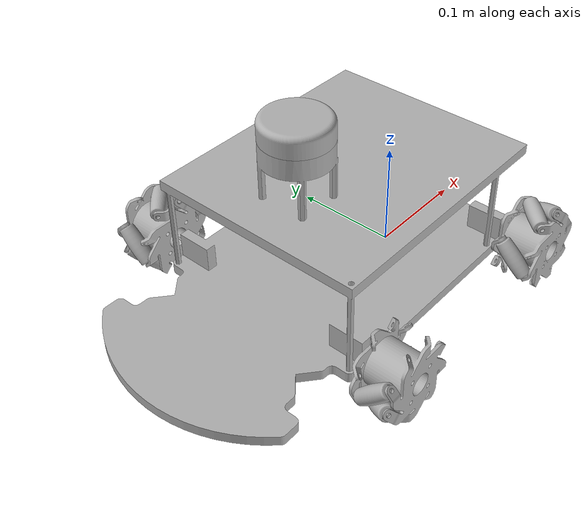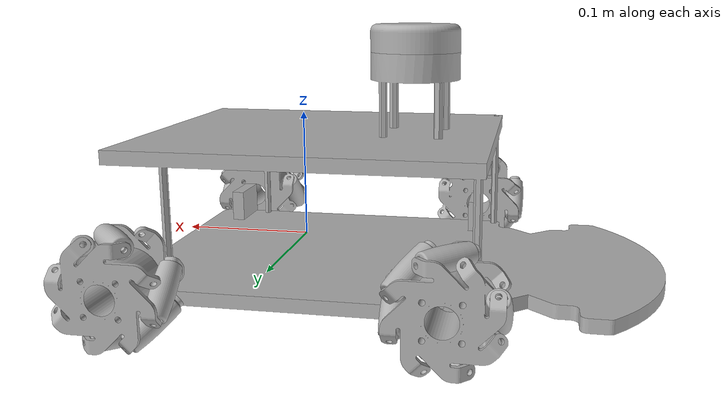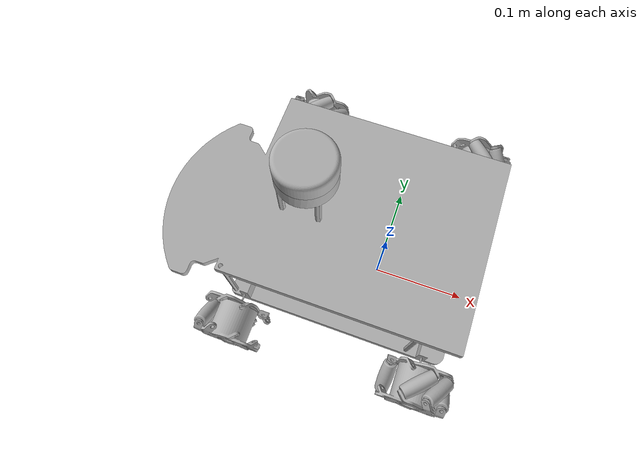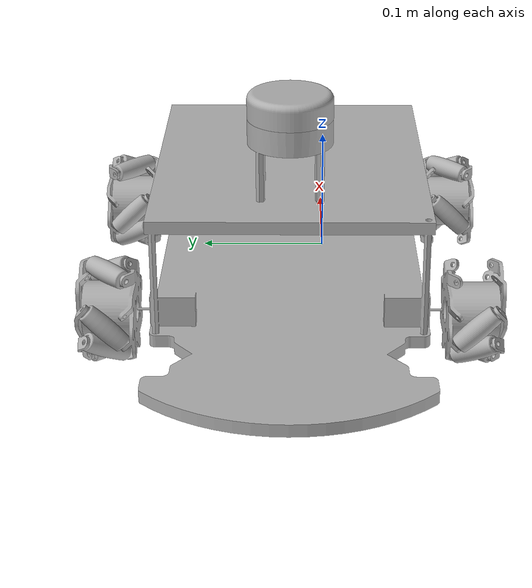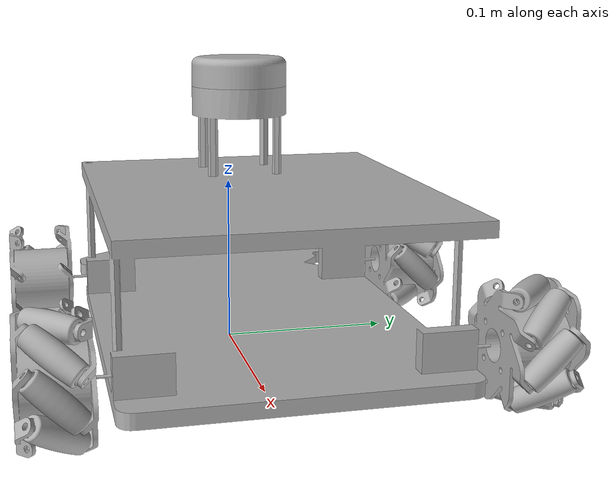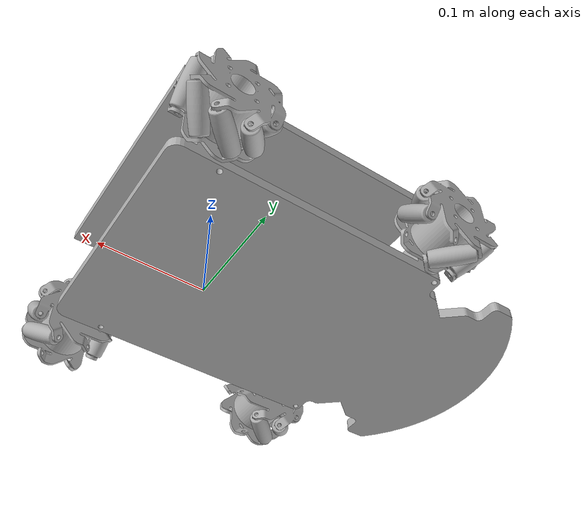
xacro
<?xml version="1.0" ?>
<robot name="car_copy_2" xmlns:xacro="http://www.ros.org/wiki/xacro">

<xacro:include filename="$(find car_copy_2_description)/urdf/materials.xacro" />
<xacro:include filename="$(find car_copy_2_description)/urdf/car_copy_2.trans" />
<xacro:include filename="$(find car_copy_2_description)/urdf/car_copy_2.gazebo" />
<link name="base_link">
  <inertial>
    <origin xyz="-0.05744576591784277 0.026263063131666993 0.03490782751752176" rpy="0 0 0"/>
    <mass value="11.13582814957309"/>
    <inertia ixx="0.069638" iyy="0.130555" izz="0.141689" ixy="1.4e-05" iyz="-4e-06" ixz="-0.009882"/>
  </inertial>
  <visual>
    <origin xyz="0 0 0" rpy="0 0 0"/>
    <geometry>
      <mesh filename="package://car_copy_2_description/meshes/base_link.stl" scale="0.001 0.001 0.001"/>
    </geometry>
    <material name="silver"/>
  </visual>
  <collision>
    <origin xyz="0 0 0" rpy="0 0 0"/>
    <geometry>
      <mesh filename="package://car_copy_2_description/meshes/base_link.stl" scale="0.001 0.001 0.001"/>
    </geometry>
  </collision>
</link>

<link name="lidar_v1_1">
  <inertial>
    <origin xyz="8.890515529325071e-08 -1.7924551614853512e-07 0.009858836865787673" rpy="0 0 0"/>
    <mass value="0.5286905929941373"/>
    <inertia ixx="0.000159" iyy="0.000159" izz="0.000284" ixy="-0.0" iyz="0.0" ixz="0.0"/>
  </inertial>
  <visual>
    <origin xyz="0.093681 -0.026254 -0.149896" rpy="0 0 0"/>
    <geometry>
      <mesh filename="package://car_copy_2_description/meshes/lidar_v1_1.stl" scale="0.001 0.001 0.001"/>
    </geometry>
    <material name="silver"/>
  </visual>
  <collision>
    <origin xyz="0.093681 -0.026254 -0.149896" rpy="0 0 0"/>
    <geometry>
      <mesh filename="package://car_copy_2_description/meshes/lidar_v1_1.stl" scale="0.001 0.001 0.001"/>
    </geometry>
  </collision>
</link>

<link name="macWheel_big_v2_1">
  <inertial>
    <origin xyz="8.991099481603371e-08 -0.021494204245300533 3.369220982320578e-07" rpy="0 0 0"/>
    <mass value="0.4755858352821359"/>
    <inertia ixx="0.000195" iyy="0.000201" izz="0.000195" ixy="-0.0" iyz="-0.0" ixz="0.0"/>
  </inertial>
  <visual>
    <origin xyz="-0.076319 0.091246 -0.007396" rpy="0 0 0"/>
    <geometry>
      <mesh filename="package://car_copy_2_description/meshes/macWheel_big_v2_1.stl" scale="0.001 0.001 0.001"/>
    </geometry>
    <material name="silver"/>
  </visual>
  <collision>
    <origin xyz="-0.076319 0.091246 -0.007396" rpy="0 0 0"/>
    <geometry>
      <mesh filename="package://car_copy_2_description/meshes/macWheel_big_v2_1.stl" scale="0.001 0.001 0.001"/>
    </geometry>
  </collision>
</link>

<link name="wheel_small_com_big_v1_1">
  <inertial>
    <origin xyz="-4.1545169586487685e-07 -4.159208721876695e-07 3.1900678559501627e-07" rpy="0 0 0"/>
    <mass value="0.05173563165158379"/>
    <inertia ixx="5e-06" iyy="4e-06" izz="5e-06" ixy="-2e-06" iyz="2e-06" ixz="1e-06"/>
  </inertial>
  <visual>
    <origin xyz="-0.098525 0.112755 -0.02958" rpy="0 0 0"/>
    <geometry>
      <mesh filename="package://car_copy_2_description/meshes/wheel_small_com_big_v1_1.stl" scale="0.001 0.001 0.001"/>
    </geometry>
    <material name="silver"/>
  </visual>
  <collision>
    <origin xyz="-0.098525 0.112755 -0.02958" rpy="0 0 0"/>
    <geometry>
      <mesh filename="package://car_copy_2_description/meshes/wheel_small_com_big_v1_1.stl" scale="0.001 0.001 0.001"/>
    </geometry>
  </collision>
</link>

<link name="wheel_small_com_big_v1__1__1">
  <inertial>
    <origin xyz="3.015862848620987e-07 -4.159208233378564e-07 4.3692696691244315e-07" rpy="0 0 0"/>
    <mass value="0.05173563165158379"/>
    <inertia ixx="4e-06" iyy="4e-06" izz="6e-06" ixy="-2e-06" iyz="-0.0" ixz="-0.0"/>
  </inertial>
  <visual>
    <origin xyz="-0.076334 0.112755 -0.038784" rpy="0 0 0"/>
    <geometry>
      <mesh filename="package://car_copy_2_description/meshes/wheel_small_com_big_v1__1__1.stl" scale="0.001 0.001 0.001"/>
    </geometry>
    <material name="silver"/>
  </visual>
  <collision>
    <origin xyz="-0.076334 0.112755 -0.038784" rpy="0 0 0"/>
    <geometry>
      <mesh filename="package://car_copy_2_description/meshes/wheel_small_com_big_v1__1__1.stl" scale="0.001 0.001 0.001"/>
    </geometry>
  </collision>
</link>

<link name="wheel_small_com_big_v1__2__1">
  <inertial>
    <origin xyz="-4.0472634010857433e-07 7.429832887817511e-09 3.190067821672027e-07" rpy="0 0 0"/>
    <mass value="0.05173563165158379"/>
    <inertia ixx="5e-06" iyy="4e-06" izz="5e-06" ixy="-2e-06" iyz="-2e-06" ixz="-1e-06"/>
  </inertial>
  <visual>
    <origin xyz="-0.054114 0.112725 -0.02958" rpy="0 0 0"/>
    <geometry>
      <mesh filename="package://car_copy_2_description/meshes/wheel_small_com_big_v1__2__1.stl" scale="0.001 0.001 0.001"/>
    </geometry>
    <material name="silver"/>
  </visual>
  <collision>
    <origin xyz="-0.054114 0.112725 -0.02958" rpy="0 0 0"/>
    <geometry>
      <mesh filename="package://car_copy_2_description/meshes/wheel_small_com_big_v1__2__1.stl" scale="0.001 0.001 0.001"/>
    </geometry>
  </collision>
</link>

<link name="wheel_small_com_big_v1__3__1">
  <inertial>
    <origin xyz="-1.0088931273743995e-08 7.429783607793006e-09 1.252517464137709e-07" rpy="0 0 0"/>
    <mass value="0.05173563165158379"/>
    <inertia ixx="6e-06" iyy="4e-06" izz="4e-06" ixy="0.0" iyz="-2e-06" ixz="0.0"/>
  </inertial>
  <visual>
    <origin xyz="-0.044931 0.112725 -0.007381" rpy="0 0 0"/>
    <geometry>
      <mesh filename="package://car_copy_2_description/meshes/wheel_small_com_big_v1__3__1.stl" scale="0.001 0.001 0.001"/>
    </geometry>
    <material name="silver"/>
  </visual>
  <collision>
    <origin xyz="-0.044931 0.112725 -0.007381" rpy="0 0 0"/>
    <geometry>
      <mesh filename="package://car_copy_2_description/meshes/wheel_small_com_big_v1__3__1.stl" scale="0.001 0.001 0.001"/>
    </geometry>
  </collision>
</link>

<link name="wheel_small_com_big_v1__4__1">
  <inertial>
    <origin xyz="1.8991089797970595e-07 7.429785620072238e-09 -4.5139764098638124e-07" rpy="0 0 0"/>
    <mass value="0.05173563165158379"/>
    <inertia ixx="6e-06" iyy="4e-06" izz="4e-06" ixy="-0.0" iyz="2e-06" ixz="0.0"/>
  </inertial>
  <visual>
    <origin xyz="-0.107707 0.112725 -0.007412" rpy="0 0 0"/>
    <geometry>
      <mesh filename="package://car_copy_2_description/meshes/wheel_small_com_big_v1__4__1.stl" scale="0.001 0.001 0.001"/>
    </geometry>
    <material name="silver"/>
  </visual>
  <collision>
    <origin xyz="-0.107707 0.112725 -0.007412" rpy="0 0 0"/>
    <geometry>
      <mesh filename="package://car_copy_2_description/meshes/wheel_small_com_big_v1__4__1.stl" scale="0.001 0.001 0.001"/>
    </geometry>
  </collision>
</link>

<link name="wheel_small_com_big_v1__5__1">
  <inertial>
    <origin xyz="-4.154516963644772e-07 7.429741641362675e-09 3.548471798949654e-07" rpy="0 0 0"/>
    <mass value="0.05173563165158379"/>
    <inertia ixx="5e-06" iyy="4e-06" izz="5e-06" ixy="2e-06" iyz="2e-06" ixz="-1e-06"/>
  </inertial>
  <visual>
    <origin xyz="-0.098525 0.112725 0.014788" rpy="0 0 0"/>
    <geometry>
      <mesh filename="package://car_copy_2_description/meshes/wheel_small_com_big_v1__5__1.stl" scale="0.001 0.001 0.001"/>
    </geometry>
    <material name="silver"/>
  </visual>
  <collision>
    <origin xyz="-0.098525 0.112725 0.014788" rpy="0 0 0"/>
    <geometry>
      <mesh filename="package://car_copy_2_description/meshes/wheel_small_com_big_v1__5__1.stl" scale="0.001 0.001 0.001"/>
    </geometry>
  </collision>
</link>

<link name="wheel_small_com_big_v1__7__1">
  <inertial>
    <origin xyz="3.0158628457066516e-07 7.429790366275668e-09 2.3692696700036708e-07" rpy="0 0 0"/>
    <mass value="0.05173563165158379"/>
    <inertia ixx="4e-06" iyy="4e-06" izz="6e-06" ixy="2e-06" iyz="0.0" ixz="-0.0"/>
  </inertial>
  <visual>
    <origin xyz="-0.076334 0.112725 0.023992" rpy="0 0 0"/>
    <geometry>
      <mesh filename="package://car_copy_2_description/meshes/wheel_small_com_big_v1__7__1.stl" scale="0.001 0.001 0.001"/>
    </geometry>
    <material name="silver"/>
  </visual>
  <collision>
    <origin xyz="-0.076334 0.112725 0.023992" rpy="0 0 0"/>
    <geometry>
      <mesh filename="package://car_copy_2_description/meshes/wheel_small_com_big_v1__7__1.stl" scale="0.001 0.001 0.001"/>
    </geometry>
  </collision>
</link>

<link name="wheel_small_com_big_v1__6__1">
  <inertial>
    <origin xyz="1.0783118038065753e-07 7.429838771999542e-09 -1.5771033719594318e-07" rpy="0 0 0"/>
    <mass value="0.05173563165158379"/>
    <inertia ixx="5e-06" iyy="4e-06" izz="5e-06" ixy="2e-06" iyz="-2e-06" ixz="1e-06"/>
  </inertial>
  <visual>
    <origin xyz="-0.054135 0.112725 0.014809" rpy="0 0 0"/>
    <geometry>
      <mesh filename="package://car_copy_2_description/meshes/wheel_small_com_big_v1__6__1.stl" scale="0.001 0.001 0.001"/>
    </geometry>
    <material name="silver"/>
  </visual>
  <collision>
    <origin xyz="-0.054135 0.112725 0.014809" rpy="0 0 0"/>
    <geometry>
      <mesh filename="package://car_copy_2_description/meshes/wheel_small_com_big_v1__6__1.stl" scale="0.001 0.001 0.001"/>
    </geometry>
  </collision>
</link>

<link name="macWheel_big_v2_Mirror__1">
  <inertial>
    <origin xyz="8.991099474664477e-08 0.02327117826473324 3.369220980290952e-07" rpy="0 0 0"/>
    <mass value="0.4755858352821358"/>
    <inertia ixx="0.000195" iyy="0.000201" izz="0.000195" ixy="0.0" iyz="0.0" ixz="0.0"/>
  </inertial>
  <visual>
    <origin xyz="-0.076319 -0.143754 -0.007396" rpy="0 0 0"/>
    <geometry>
      <mesh filename="package://car_copy_2_description/meshes/macWheel_big_v2_Mirror__1.stl" scale="0.001 0.001 0.001"/>
    </geometry>
    <material name="silver"/>
  </visual>
  <collision>
    <origin xyz="-0.076319 -0.143754 -0.007396" rpy="0 0 0"/>
    <geometry>
      <mesh filename="package://car_copy_2_description/meshes/macWheel_big_v2_Mirror__1.stl" scale="0.001 0.001 0.001"/>
    </geometry>
  </collision>
</link>

<link name="wheel_small_com_big_v1__8__1">
  <inertial>
    <origin xyz="7.199078254360725e-08 -3.34103028021282e-08 -1.6843569376756573e-07" rpy="0 0 0"/>
    <mass value="0.05173563165158379"/>
    <inertia ixx="5e-06" iyy="4e-06" izz="5e-06" ixy="2e-06" iyz="-2e-06" ixz="1e-06"/>
  </inertial>
  <visual>
    <origin xyz="-0.098503 -0.16701 -0.029602" rpy="0 0 0"/>
    <geometry>
      <mesh filename="package://car_copy_2_description/meshes/wheel_small_com_big_v1__8__1.stl" scale="0.001 0.001 0.001"/>
    </geometry>
    <material name="silver"/>
  </visual>
  <collision>
    <origin xyz="-0.098503 -0.16701 -0.029602" rpy="0 0 0"/>
    <geometry>
      <mesh filename="package://car_copy_2_description/meshes/wheel_small_com_big_v1__8__1.stl" scale="0.001 0.001 0.001"/>
    </geometry>
  </collision>
</link>

<link name="wheel_small_com_big_v1__9__1">
  <inertial>
    <origin xyz="3.015862843069872e-07 3.899402557516751e-07 4.3692696678754306e-07" rpy="0 0 0"/>
    <mass value="0.05173563165158379"/>
    <inertia ixx="4e-06" iyy="4e-06" izz="6e-06" ixy="2e-06" iyz="0.0" ixz="-0.0"/>
  </inertial>
  <visual>
    <origin xyz="-0.076334 -0.16704 -0.038784" rpy="0 0 0"/>
    <geometry>
      <mesh filename="package://car_copy_2_description/meshes/wheel_small_com_big_v1__9__1.stl" scale="0.001 0.001 0.001"/>
    </geometry>
    <material name="silver"/>
  </visual>
  <collision>
    <origin xyz="-0.076334 -0.16704 -0.038784" rpy="0 0 0"/>
    <geometry>
      <mesh filename="package://car_copy_2_description/meshes/wheel_small_com_big_v1__9__1.stl" scale="0.001 0.001 0.001"/>
    </geometry>
  </collision>
</link>

<link name="wheel_small_com_big_v1__10__1">
  <inertial>
    <origin xyz="1.0783117992269053e-07 3.899402070406399e-07 -1.6843569693864024e-07" rpy="0 0 0"/>
    <mass value="0.05173563165158379"/>
    <inertia ixx="5e-06" iyy="4e-06" izz="5e-06" ixy="2e-06" iyz="2e-06" ixz="-1e-06"/>
  </inertial>
  <visual>
    <origin xyz="-0.054135 -0.16704 -0.029602" rpy="0 0 0"/>
    <geometry>
      <mesh filename="package://car_copy_2_description/meshes/wheel_small_com_big_v1__10__1.stl" scale="0.001 0.001 0.001"/>
    </geometry>
    <material name="silver"/>
  </visual>
  <collision>
    <origin xyz="-0.054135 -0.16704 -0.029602" rpy="0 0 0"/>
    <geometry>
      <mesh filename="package://car_copy_2_description/meshes/wheel_small_com_big_v1__10__1.stl" scale="0.001 0.001 0.001"/>
    </geometry>
  </collision>
</link>

<link name="wheel_small_com_big_v1__11__1">
  <inertial>
    <origin xyz="-1.0088932335394762e-08 -3.3410351013563044e-08 1.2525174600003935e-07" rpy="0 0 0"/>
    <mass value="0.05173563165158379"/>
    <inertia ixx="6e-06" iyy="4e-06" izz="4e-06" ixy="-0.0" iyz="2e-06" ixz="0.0"/>
  </inertial>
  <visual>
    <origin xyz="-0.044931 -0.16701 -0.007381" rpy="0 0 0"/>
    <geometry>
      <mesh filename="package://car_copy_2_description/meshes/wheel_small_com_big_v1__11__1.stl" scale="0.001 0.001 0.001"/>
    </geometry>
    <material name="silver"/>
  </visual>
  <collision>
    <origin xyz="-0.044931 -0.16701 -0.007381" rpy="0 0 0"/>
    <geometry>
      <mesh filename="package://car_copy_2_description/meshes/wheel_small_com_big_v1__11__1.stl" scale="0.001 0.001 0.001"/>
    </geometry>
  </collision>
</link>

<link name="wheel_small_com_big_v1__12__1">
  <inertial>
    <origin xyz="1.8991106845445138e-07 3.8994024945115946e-07 1.2525174589855803e-07" rpy="0 0 0"/>
    <mass value="0.05173563165158379"/>
    <inertia ixx="6e-06" iyy="4e-06" izz="4e-06" ixy="0.0" iyz="-2e-06" ixz="0.0"/>
  </inertial>
  <visual>
    <origin xyz="-0.107707 -0.16704 -0.007381" rpy="0 0 0"/>
    <geometry>
      <mesh filename="package://car_copy_2_description/meshes/wheel_small_com_big_v1__12__1.stl" scale="0.001 0.001 0.001"/>
    </geometry>
    <material name="silver"/>
  </visual>
  <collision>
    <origin xyz="-0.107707 -0.16704 -0.007381" rpy="0 0 0"/>
    <geometry>
      <mesh filename="package://car_copy_2_description/meshes/wheel_small_com_big_v1__12__1.stl" scale="0.001 0.001 0.001"/>
    </geometry>
  </collision>
</link>

<link name="wheel_small_com_big_v1__13__1">
  <inertial>
    <origin xyz="1.0783118069290776e-07 -3.3410405525513553e-08 -1.577103363840926e-07" rpy="0 0 0"/>
    <mass value="0.05173563165158379"/>
    <inertia ixx="5e-06" iyy="4e-06" izz="5e-06" ixy="-2e-06" iyz="2e-06" ixz="1e-06"/>
  </inertial>
  <visual>
    <origin xyz="-0.054135 -0.16701 0.014809" rpy="0 0 0"/>
    <geometry>
      <mesh filename="package://car_copy_2_description/meshes/wheel_small_com_big_v1__13__1.stl" scale="0.001 0.001 0.001"/>
    </geometry>
    <material name="silver"/>
  </visual>
  <collision>
    <origin xyz="-0.054135 -0.16701 0.014809" rpy="0 0 0"/>
    <geometry>
      <mesh filename="package://car_copy_2_description/meshes/wheel_small_com_big_v1__13__1.stl" scale="0.001 0.001 0.001"/>
    </geometry>
  </collision>
</link>

<link name="wheel_small_com_big_v1__14__1">
  <inertial>
    <origin xyz="3.0158628468168747e-07 -3.3410357730412343e-08 2.3692696789201495e-07" rpy="0 0 0"/>
    <mass value="0.05173563165158379"/>
    <inertia ixx="4e-06" iyy="4e-06" izz="6e-06" ixy="-2e-06" iyz="-0.0" ixz="-0.0"/>
  </inertial>
  <visual>
    <origin xyz="-0.076334 -0.16701 0.023992" rpy="0 0 0"/>
    <geometry>
      <mesh filename="package://car_copy_2_description/meshes/wheel_small_com_big_v1__14__1.stl" scale="0.001 0.001 0.001"/>
    </geometry>
    <material name="silver"/>
  </visual>
  <collision>
    <origin xyz="-0.076334 -0.16701 0.023992" rpy="0 0 0"/>
    <geometry>
      <mesh filename="package://car_copy_2_description/meshes/wheel_small_com_big_v1__14__1.stl" scale="0.001 0.001 0.001"/>
    </geometry>
  </collision>
</link>

<link name="wheel_small_com_big_v1__15__1">
  <inertial>
    <origin xyz="7.199078351505239e-08 3.8994029774586103e-07 -1.5771034077467772e-07" rpy="0 0 0"/>
    <mass value="0.05173563165158379"/>
    <inertia ixx="5e-06" iyy="4e-06" izz="5e-06" ixy="-2e-06" iyz="-2e-06" ixz="-1e-06"/>
  </inertial>
  <visual>
    <origin xyz="-0.098503 -0.16704 0.014809" rpy="0 0 0"/>
    <geometry>
      <mesh filename="package://car_copy_2_description/meshes/wheel_small_com_big_v1__15__1.stl" scale="0.001 0.001 0.001"/>
    </geometry>
    <material name="silver"/>
  </visual>
  <collision>
    <origin xyz="-0.098503 -0.16704 0.014809" rpy="0 0 0"/>
    <geometry>
      <mesh filename="package://car_copy_2_description/meshes/wheel_small_com_big_v1__15__1.stl" scale="0.001 0.001 0.001"/>
    </geometry>
  </collision>
</link>

<link name="macWheel_big_v2__1__1">
  <inertial>
    <origin xyz="8.991099478827813e-08 0.021493845754267993 3.3693200623009095e-07" rpy="0 0 0"/>
    <mass value="0.4755858352821359"/>
    <inertia ixx="0.000195" iyy="0.000201" izz="0.000195" ixy="0.0" iyz="-0.0" ixz="-0.0"/>
  </inertial>
  <visual>
    <origin xyz="0.133681 -0.143754 -0.007396" rpy="0 0 0"/>
    <geometry>
      <mesh filename="package://car_copy_2_description/meshes/macWheel_big_v2__1__1.stl" scale="0.001 0.001 0.001"/>
    </geometry>
    <material name="silver"/>
  </visual>
  <collision>
    <origin xyz="0.133681 -0.143754 -0.007396" rpy="0 0 0"/>
    <geometry>
      <mesh filename="package://car_copy_2_description/meshes/macWheel_big_v2__1__1.stl" scale="0.001 0.001 0.001"/>
    </geometry>
  </collision>
</link>

<link name="wheel_small_com_big_v1__16__1">
  <inertial>
    <origin xyz="-4.1545169618406597e-07 -3.6592087215847613e-07 3.190067861501278e-07" rpy="0 0 0"/>
    <mass value="0.05173563165158379"/>
    <inertia ixx="5e-06" iyy="4e-06" izz="5e-06" ixy="-2e-06" iyz="2e-06" ixz="1e-06"/>
  </inertial>
  <visual>
    <origin xyz="0.111475 -0.165233 -0.02958" rpy="0 0 0"/>
    <geometry>
      <mesh filename="package://car_copy_2_description/meshes/wheel_small_com_big_v1__16__1.stl" scale="0.001 0.001 0.001"/>
    </geometry>
    <material name="silver"/>
  </visual>
  <collision>
    <origin xyz="0.111475 -0.165233 -0.02958" rpy="0 0 0"/>
    <geometry>
      <mesh filename="package://car_copy_2_description/meshes/wheel_small_com_big_v1__16__1.stl" scale="0.001 0.001 0.001"/>
    </geometry>
  </collision>
</link>

<link name="wheel_small_com_big_v1__17__1">
  <inertial>
    <origin xyz="3.0158628472332083e-07 -3.659208228923294e-07 4.369269677867438e-07" rpy="0 0 0"/>
    <mass value="0.05173563165158379"/>
    <inertia ixx="4e-06" iyy="4e-06" izz="6e-06" ixy="-2e-06" iyz="-0.0" ixz="-0.0"/>
  </inertial>
  <visual>
    <origin xyz="0.133666 -0.165233 -0.038784" rpy="0 0 0"/>
    <geometry>
      <mesh filename="package://car_copy_2_description/meshes/wheel_small_com_big_v1__17__1.stl" scale="0.001 0.001 0.001"/>
    </geometry>
    <material name="silver"/>
  </visual>
  <collision>
    <origin xyz="0.133666 -0.165233 -0.038784" rpy="0 0 0"/>
    <geometry>
      <mesh filename="package://car_copy_2_description/meshes/wheel_small_com_big_v1__17__1.stl" scale="0.001 0.001 0.001"/>
    </geometry>
  </collision>
</link>

<link name="wheel_small_com_big_v1__18__1">
  <inertial>
    <origin xyz="1.8991089988096288e-07 5.742978409495336e-08 -4.5139764158919765e-07" rpy="0 0 0"/>
    <mass value="0.05173563165158379"/>
    <inertia ixx="6e-06" iyy="4e-06" izz="4e-06" ixy="-0.0" iyz="2e-06" ixz="0.0"/>
  </inertial>
  <visual>
    <origin xyz="0.102293 -0.165263 -0.007412" rpy="0 0 0"/>
    <geometry>
      <mesh filename="package://car_copy_2_description/meshes/wheel_small_com_big_v1__18__1.stl" scale="0.001 0.001 0.001"/>
    </geometry>
    <material name="silver"/>
  </visual>
  <collision>
    <origin xyz="0.102293 -0.165263 -0.007412" rpy="0 0 0"/>
    <geometry>
      <mesh filename="package://car_copy_2_description/meshes/wheel_small_com_big_v1__18__1.stl" scale="0.001 0.001 0.001"/>
    </geometry>
  </collision>
</link>

<link name="wheel_small_com_big_v1__19__1">
  <inertial>
    <origin xyz="-4.1545169618406597e-07 5.742974157341152e-08 3.548471804726283e-07" rpy="0 0 0"/>
    <mass value="0.05173563165158379"/>
    <inertia ixx="5e-06" iyy="4e-06" izz="5e-06" ixy="2e-06" iyz="2e-06" ixz="-1e-06"/>
  </inertial>
  <visual>
    <origin xyz="0.111475 -0.165263 0.014788" rpy="0 0 0"/>
    <geometry>
      <mesh filename="package://car_copy_2_description/meshes/wheel_small_com_big_v1__19__1.stl" scale="0.001 0.001 0.001"/>
    </geometry>
    <material name="silver"/>
  </visual>
  <collision>
    <origin xyz="0.111475 -0.165263 0.014788" rpy="0 0 0"/>
    <geometry>
      <mesh filename="package://car_copy_2_description/meshes/wheel_small_com_big_v1__19__1.stl" scale="0.001 0.001 0.001"/>
    </geometry>
  </collision>
</link>

<link name="wheel_small_com_big_v1__20__1">
  <inertial>
    <origin xyz="-4.047263396644851e-07 5.742983336110008e-08 3.190067824274112e-07" rpy="0 0 0"/>
    <mass value="0.05173563165158379"/>
    <inertia ixx="5e-06" iyy="4e-06" izz="5e-06" ixy="-2e-06" iyz="-2e-06" ixz="-1e-06"/>
  </inertial>
  <visual>
    <origin xyz="0.155886 -0.165263 -0.02958" rpy="0 0 0"/>
    <geometry>
      <mesh filename="package://car_copy_2_description/meshes/wheel_small_com_big_v1__20__1.stl" scale="0.001 0.001 0.001"/>
    </geometry>
    <material name="silver"/>
  </visual>
  <collision>
    <origin xyz="0.155886 -0.165263 -0.02958" rpy="0 0 0"/>
    <geometry>
      <mesh filename="package://car_copy_2_description/meshes/wheel_small_com_big_v1__20__1.stl" scale="0.001 0.001 0.001"/>
    </geometry>
  </collision>
</link>

<link name="wheel_small_com_big_v1__21__1">
  <inertial>
    <origin xyz="-1.0089100943577733e-08 -3.6592081614772454e-07 -4.5139764168720953e-07" rpy="0 0 0"/>
    <mass value="0.05173563165158379"/>
    <inertia ixx="6e-06" iyy="4e-06" izz="4e-06" ixy="0.0" iyz="-2e-06" ixz="0.0"/>
  </inertial>
  <visual>
    <origin xyz="0.165069 -0.165233 -0.007412" rpy="0 0 0"/>
    <geometry>
      <mesh filename="package://car_copy_2_description/meshes/wheel_small_com_big_v1__21__1.stl" scale="0.001 0.001 0.001"/>
    </geometry>
    <material name="silver"/>
  </visual>
  <collision>
    <origin xyz="0.165069 -0.165233 -0.007412" rpy="0 0 0"/>
    <geometry>
      <mesh filename="package://car_copy_2_description/meshes/wheel_small_com_big_v1__21__1.stl" scale="0.001 0.001 0.001"/>
    </geometry>
  </collision>
</link>

<link name="wheel_small_com_big_v1__22__1">
  <inertial>
    <origin xyz="3.015862846678097e-07 5.7429790589758056e-08 2.3692696787119827e-07" rpy="0 0 0"/>
    <mass value="0.05173563165158379"/>
    <inertia ixx="4e-06" iyy="4e-06" izz="6e-06" ixy="2e-06" iyz="0.0" ixz="-0.0"/>
  </inertial>
  <visual>
    <origin xyz="0.133666 -0.165263 0.023992" rpy="0 0 0"/>
    <geometry>
      <mesh filename="package://car_copy_2_description/meshes/wheel_small_com_big_v1__22__1.stl" scale="0.001 0.001 0.001"/>
    </geometry>
    <material name="silver"/>
  </visual>
  <collision>
    <origin xyz="0.133666 -0.165263 0.023992" rpy="0 0 0"/>
    <geometry>
      <mesh filename="package://car_copy_2_description/meshes/wheel_small_com_big_v1__22__1.stl" scale="0.001 0.001 0.001"/>
    </geometry>
  </collision>
</link>

<link name="wheel_small_com_big_v1__23__1">
  <inertial>
    <origin xyz="3.7429939472866103e-07 -4.1757016064347674e-07 -3.741785504478984e-07" rpy="0 0 0"/>
    <mass value="0.05173563165158379"/>
    <inertia ixx="5e-06" iyy="4e-06" izz="5e-06" ixy="2e-06" iyz="-2e-06" ixz="1e-06"/>
  </inertial>
  <visual>
    <origin xyz="0.154118 -0.166287 0.014509" rpy="0 0 0"/>
    <geometry>
      <mesh filename="package://car_copy_2_description/meshes/wheel_small_com_big_v1__23__1.stl" scale="0.001 0.001 0.001"/>
    </geometry>
    <material name="silver"/>
  </visual>
  <collision>
    <origin xyz="0.154118 -0.166287 0.014509" rpy="0 0 0"/>
    <geometry>
      <mesh filename="package://car_copy_2_description/meshes/wheel_small_com_big_v1__23__1.stl" scale="0.001 0.001 0.001"/>
    </geometry>
  </collision>
</link>

<link name="macWheel_big_v2_Mirror__2">
  <inertial>
    <origin xyz="8.991099476052256e-08 -0.02327153675619756 3.3692209818782237e-07" rpy="0 0 0"/>
    <mass value="0.4755858352821358"/>
    <inertia ixx="0.000195" iyy="0.000201" izz="0.000195" ixy="0.0" iyz="0.0" ixz="0.0"/>
  </inertial>
  <visual>
    <origin xyz="0.133681 0.091246 -0.007396" rpy="0 0 0"/>
    <geometry>
      <mesh filename="package://car_copy_2_description/meshes/macWheel_big_v2_Mirror__2.stl" scale="0.001 0.001 0.001"/>
    </geometry>
    <material name="silver"/>
  </visual>
  <collision>
    <origin xyz="0.133681 0.091246 -0.007396" rpy="0 0 0"/>
    <geometry>
      <mesh filename="package://car_copy_2_description/meshes/macWheel_big_v2_Mirror__2.stl" scale="0.001 0.001 0.001"/>
    </geometry>
  </collision>
</link>

<link name="wheel_small_com_big_v1__31__1">
  <inertial>
    <origin xyz="-1.21764323568474e-07 2.5156871683029713e-07 4.3692696793246055e-07" rpy="0 0 0"/>
    <mass value="0.05173563165158379"/>
    <inertia ixx="4e-06" iyy="4e-06" izz="6e-06" ixy="2e-06" iyz="0.0" ixz="-0.0"/>
  </inertial>
  <visual>
    <origin xyz="0.133696 0.114533 -0.038784" rpy="0 0 0"/>
    <geometry>
      <mesh filename="package://car_copy_2_description/meshes/wheel_small_com_big_v1__31__1.stl" scale="0.001 0.001 0.001"/>
    </geometry>
    <material name="silver"/>
  </visual>
  <collision>
    <origin xyz="0.133696 0.114533 -0.038784" rpy="0 0 0"/>
    <geometry>
      <mesh filename="package://car_copy_2_description/meshes/wheel_small_com_big_v1__31__1.stl" scale="0.001 0.001 0.001"/>
    </geometry>
  </collision>
</link>

<link name="wheel_small_com_big_v1__30__1">
  <inertial>
    <origin xyz="-4.047263403583745e-07 2.5156866959030744e-07 3.1900678305885055e-07" rpy="0 0 0"/>
    <mass value="0.05173563165158379"/>
    <inertia ixx="5e-06" iyy="4e-06" izz="5e-06" ixy="2e-06" iyz="2e-06" ixz="-1e-06"/>
  </inertial>
  <visual>
    <origin xyz="0.155886 0.114533 -0.02958" rpy="0 0 0"/>
    <geometry>
      <mesh filename="package://car_copy_2_description/meshes/wheel_small_com_big_v1__30__1.stl" scale="0.001 0.001 0.001"/>
    </geometry>
    <material name="silver"/>
  </visual>
  <collision>
    <origin xyz="0.155886 0.114533 -0.02958" rpy="0 0 0"/>
    <geometry>
      <mesh filename="package://car_copy_2_description/meshes/wheel_small_com_big_v1__30__1.stl" scale="0.001 0.001 0.001"/>
    </geometry>
  </collision>
</link>

<link name="wheel_small_com_big_v1__29__1">
  <inertial>
    <origin xyz="-4.154516961563104e-07 -3.25080626556451e-07 3.190067862784973e-07" rpy="0 0 0"/>
    <mass value="0.05173563165158379"/>
    <inertia ixx="5e-06" iyy="4e-06" izz="5e-06" ixy="2e-06" iyz="-2e-06" ixz="1e-06"/>
  </inertial>
  <visual>
    <origin xyz="0.111475 0.114502 -0.02958" rpy="0 0 0"/>
    <geometry>
      <mesh filename="package://car_copy_2_description/meshes/wheel_small_com_big_v1__29__1.stl" scale="0.001 0.001 0.001"/>
    </geometry>
    <material name="silver"/>
  </visual>
  <collision>
    <origin xyz="0.111475 0.114502 -0.02958" rpy="0 0 0"/>
    <geometry>
      <mesh filename="package://car_copy_2_description/meshes/wheel_small_com_big_v1__29__1.stl" scale="0.001 0.001 0.001"/>
    </geometry>
  </collision>
</link>

<link name="wheel_small_com_big_v1__28__1">
  <inertial>
    <origin xyz="1.899110684266958e-07 -3.2508068155412406e-07 1.2525174605641787e-07" rpy="0 0 0"/>
    <mass value="0.05173563165158379"/>
    <inertia ixx="6e-06" iyy="4e-06" izz="4e-06" ixy="0.0" iyz="-2e-06" ixz="0.0"/>
  </inertial>
  <visual>
    <origin xyz="0.102293 0.114502 -0.007381" rpy="0 0 0"/>
    <geometry>
      <mesh filename="package://car_copy_2_description/meshes/wheel_small_com_big_v1__28__1.stl" scale="0.001 0.001 0.001"/>
    </geometry>
    <material name="silver"/>
  </visual>
  <collision>
    <origin xyz="0.102293 0.114502 -0.007381" rpy="0 0 0"/>
    <geometry>
      <mesh filename="package://car_copy_2_description/meshes/wheel_small_com_big_v1__28__1.stl" scale="0.001 0.001 0.001"/>
    </geometry>
  </collision>
</link>

<link name="wheel_small_com_big_v1__27__1">
  <inertial>
    <origin xyz="-1.008893213416684e-08 2.515687181348092e-07 1.2525174613448042e-07" rpy="0 0 0"/>
    <mass value="0.05173563165158379"/>
    <inertia ixx="6e-06" iyy="4e-06" izz="4e-06" ixy="-0.0" iyz="2e-06" ixz="0.0"/>
  </inertial>
  <visual>
    <origin xyz="0.165069 0.114533 -0.007381" rpy="0 0 0"/>
    <geometry>
      <mesh filename="package://car_copy_2_description/meshes/wheel_small_com_big_v1__27__1.stl" scale="0.001 0.001 0.001"/>
    </geometry>
    <material name="silver"/>
  </visual>
  <collision>
    <origin xyz="0.165069 0.114533 -0.007381" rpy="0 0 0"/>
    <geometry>
      <mesh filename="package://car_copy_2_description/meshes/wheel_small_com_big_v1__27__1.stl" scale="0.001 0.001 0.001"/>
    </geometry>
  </collision>
</link>

<link name="wheel_small_com_big_v1__26__1">
  <inertial>
    <origin xyz="7.199078354280797e-08 -3.2508063332881143e-07 -1.577103405734498e-07" rpy="0 0 0"/>
    <mass value="0.05173563165158379"/>
    <inertia ixx="5e-06" iyy="4e-06" izz="5e-06" ixy="-2e-06" iyz="-2e-06" ixz="-1e-06"/>
  </inertial>
  <visual>
    <origin xyz="0.111497 0.114502 0.014809" rpy="0 0 0"/>
    <geometry>
      <mesh filename="package://car_copy_2_description/meshes/wheel_small_com_big_v1__26__1.stl" scale="0.001 0.001 0.001"/>
    </geometry>
    <material name="silver"/>
  </visual>
  <collision>
    <origin xyz="0.111497 0.114502 0.014809" rpy="0 0 0"/>
    <geometry>
      <mesh filename="package://car_copy_2_description/meshes/wheel_small_com_big_v1__26__1.stl" scale="0.001 0.001 0.001"/>
    </geometry>
  </collision>
</link>

<link name="wheel_small_com_big_v1__25__1">
  <inertial>
    <origin xyz="-4.0472633897059573e-07 -3.250807301402592e-07 3.5484718438616447e-07" rpy="0 0 0"/>
    <mass value="0.05173563165158379"/>
    <inertia ixx="5e-06" iyy="4e-06" izz="5e-06" ixy="-2e-06" iyz="2e-06" ixz="1e-06"/>
  </inertial>
  <visual>
    <origin xyz="0.155886 0.114502 0.014788" rpy="0 0 0"/>
    <geometry>
      <mesh filename="package://car_copy_2_description/meshes/wheel_small_com_big_v1__25__1.stl" scale="0.001 0.001 0.001"/>
    </geometry>
    <material name="silver"/>
  </visual>
  <collision>
    <origin xyz="0.155886 0.114502 0.014788" rpy="0 0 0"/>
    <geometry>
      <mesh filename="package://car_copy_2_description/meshes/wheel_small_com_big_v1__25__1.stl" scale="0.001 0.001 0.001"/>
    </geometry>
  </collision>
</link>

<link name="wheel_small_com_big_v1__24__1">
  <inertial>
    <origin xyz="-1.2176431712918045e-07 -3.250806760723979e-07 2.3692696809324287e-07" rpy="0 0 0"/>
    <mass value="0.05173563165158379"/>
    <inertia ixx="4e-06" iyy="4e-06" izz="6e-06" ixy="-2e-06" iyz="0.0" ixz="0.0"/>
  </inertial>
  <visual>
    <origin xyz="0.133696 0.114502 0.023992" rpy="0 0 0"/>
    <geometry>
      <mesh filename="package://car_copy_2_description/meshes/wheel_small_com_big_v1__24__1.stl" scale="0.001 0.001 0.001"/>
    </geometry>
    <material name="silver"/>
  </visual>
  <collision>
    <origin xyz="0.133696 0.114502 0.023992" rpy="0 0 0"/>
    <geometry>
      <mesh filename="package://car_copy_2_description/meshes/wheel_small_com_big_v1__24__1.stl" scale="0.001 0.001 0.001"/>
    </geometry>
  </collision>
</link>

<joint name="Rigid 3" type="fixed">
  <origin xyz="-0.093681 0.026254 0.149896" rpy="0 0 0"/>
  <parent link="base_link"/>
  <child link="lidar_v1_1"/>
</joint>

<joint name="Revolute 58" type="continuous">
  <origin xyz="0.076319 -0.091246 0.007396" rpy="0 0 0"/>
  <parent link="base_link"/>
  <child link="macWheel_big_v2_1"/>
  <axis xyz="0.0 -1.0 0.0"/>
</joint>

<joint name="Revolute 59" type="continuous">
  <origin xyz="0.022206 -0.021509 0.022184" rpy="0 0 0"/>
  <parent link="macWheel_big_v2_1"/>
  <child link="wheel_small_com_big_v1_1"/>
  <axis xyz="0.5 0.707107 -0.5"/>
</joint>

<joint name="Revolute 60" type="continuous">
  <origin xyz="1.5e-05 -0.021509 0.031388" rpy="0 0 0"/>
  <parent link="macWheel_big_v2_1"/>
  <child link="wheel_small_com_big_v1__1__1"/>
  <axis xyz="0.707107 0.707107 -0.0"/>
</joint>

<joint name="Revolute 61" type="continuous">
  <origin xyz="-0.022205 -0.021479 0.022184" rpy="0 0 0"/>
  <parent link="macWheel_big_v2_1"/>
  <child link="wheel_small_com_big_v1__2__1"/>
  <axis xyz="-0.5 -0.707107 -0.5"/>
</joint>

<joint name="Revolute 62" type="continuous">
  <origin xyz="-0.031388 -0.021479 -1.5e-05" rpy="0 0 0"/>
  <parent link="macWheel_big_v2_1"/>
  <child link="wheel_small_com_big_v1__3__1"/>
  <axis xyz="-0.0 -0.707107 -0.707107"/>
</joint>

<joint name="Revolute 63" type="continuous">
  <origin xyz="0.031388 -0.021479 1.6e-05" rpy="0 0 0"/>
  <parent link="macWheel_big_v2_1"/>
  <child link="wheel_small_com_big_v1__4__1"/>
  <axis xyz="-0.0 -0.707107 0.707107"/>
</joint>

<joint name="Revolute 64" type="continuous">
  <origin xyz="0.022206 -0.021479 -0.022184" rpy="0 0 0"/>
  <parent link="macWheel_big_v2_1"/>
  <child link="wheel_small_com_big_v1__5__1"/>
  <axis xyz="0.5 -0.707107 0.5"/>
</joint>

<joint name="Revolute 65" type="continuous">
  <origin xyz="1.5e-05 -0.021479 -0.031388" rpy="0 0 0"/>
  <parent link="macWheel_big_v2_1"/>
  <child link="wheel_small_com_big_v1__7__1"/>
  <axis xyz="0.707107 -0.707107 0.0"/>
</joint>

<joint name="Revolute 66" type="continuous">
  <origin xyz="-0.022184 -0.021479 -0.022205" rpy="0 0 0"/>
  <parent link="macWheel_big_v2_1"/>
  <child link="wheel_small_com_big_v1__6__1"/>
  <axis xyz="0.5 -0.707107 -0.5"/>
</joint>

<joint name="Revolute 67" type="continuous">
  <origin xyz="0.076319 0.143754 0.007396" rpy="0 0 0"/>
  <parent link="base_link"/>
  <child link="macWheel_big_v2_Mirror__1"/>
  <axis xyz="0.0 1.0 -0.0"/>
</joint>

<joint name="Revolute 68" type="continuous">
  <origin xyz="0.022184 0.023256 0.022206" rpy="0 0 0"/>
  <parent link="macWheel_big_v2_Mirror__1"/>
  <child link="wheel_small_com_big_v1__8__1"/>
  <axis xyz="-0.5 0.707107 0.5"/>
</joint>

<joint name="Revolute 69" type="continuous">
  <origin xyz="1.5e-05 0.023286 0.031388" rpy="0 0 0"/>
  <parent link="macWheel_big_v2_Mirror__1"/>
  <child link="wheel_small_com_big_v1__9__1"/>
  <axis xyz="-0.707107 0.707107 -0.0"/>
</joint>

<joint name="Revolute 70" type="continuous">
  <origin xyz="-0.022184 0.023286 0.022206" rpy="0 0 0"/>
  <parent link="macWheel_big_v2_Mirror__1"/>
  <child link="wheel_small_com_big_v1__10__1"/>
  <axis xyz="-0.5 0.707107 -0.5"/>
</joint>

<joint name="Revolute 71" type="continuous">
  <origin xyz="-0.031388 0.023256 -1.5e-05" rpy="0 0 0"/>
  <parent link="macWheel_big_v2_Mirror__1"/>
  <child link="wheel_small_com_big_v1__11__1"/>
  <axis xyz="-0.0 0.707107 -0.707107"/>
</joint>

<joint name="Revolute 72" type="continuous">
  <origin xyz="0.031388 0.023286 -1.5e-05" rpy="0 0 0"/>
  <parent link="macWheel_big_v2_Mirror__1"/>
  <child link="wheel_small_com_big_v1__12__1"/>
  <axis xyz="-0.0 -0.707107 -0.707107"/>
</joint>

<joint name="Revolute 73" type="continuous">
  <origin xyz="-0.022184 0.023256 -0.022205" rpy="0 0 0"/>
  <parent link="macWheel_big_v2_Mirror__1"/>
  <child link="wheel_small_com_big_v1__13__1"/>
  <axis xyz="0.5 0.707107 -0.5"/>
</joint>

<joint name="Revolute 74" type="continuous">
  <origin xyz="1.5e-05 0.023256 -0.031388" rpy="0 0 0"/>
  <parent link="macWheel_big_v2_Mirror__1"/>
  <child link="wheel_small_com_big_v1__14__1"/>
  <axis xyz="0.707107 0.707107 -0.0"/>
</joint>

<joint name="Revolute 75" type="continuous">
  <origin xyz="0.022184 0.023286 -0.022205" rpy="0 0 0"/>
  <parent link="macWheel_big_v2_Mirror__1"/>
  <child link="wheel_small_com_big_v1__15__1"/>
  <axis xyz="-0.5 -0.707107 -0.5"/>
</joint>

<joint name="Revolute 76" type="continuous">
  <origin xyz="-0.133681 0.143754 0.007396" rpy="0 0 0"/>
  <parent link="base_link"/>
  <child link="macWheel_big_v2__1__1"/>
  <axis xyz="0.0 1.0 -0.0"/>
</joint>

<joint name="Revolute 77" type="continuous">
  <origin xyz="0.022206 0.021479 0.022184" rpy="0 0 0"/>
  <parent link="macWheel_big_v2__1__1"/>
  <child link="wheel_small_com_big_v1__16__1"/>
  <axis xyz="0.5 0.707107 -0.5"/>
</joint>

<joint name="Revolute 78" type="continuous">
  <origin xyz="1.5e-05 0.021479 0.031388" rpy="0 0 0"/>
  <parent link="macWheel_big_v2__1__1"/>
  <child link="wheel_small_com_big_v1__17__1"/>
  <axis xyz="0.707107 0.707107 -0.0"/>
</joint>

<joint name="Revolute 79" type="continuous">
  <origin xyz="0.031388 0.021509 1.6e-05" rpy="0 0 0"/>
  <parent link="macWheel_big_v2__1__1"/>
  <child link="wheel_small_com_big_v1__18__1"/>
  <axis xyz="-0.0 -0.707107 0.707107"/>
</joint>

<joint name="Revolute 80" type="continuous">
  <origin xyz="0.022206 0.021509 -0.022184" rpy="0 0 0"/>
  <parent link="macWheel_big_v2__1__1"/>
  <child link="wheel_small_com_big_v1__19__1"/>
  <axis xyz="0.5 -0.707107 0.5"/>
</joint>

<joint name="Revolute 81" type="continuous">
  <origin xyz="-0.022205 0.021509 0.022184" rpy="0 0 0"/>
  <parent link="macWheel_big_v2__1__1"/>
  <child link="wheel_small_com_big_v1__20__1"/>
  <axis xyz="0.5 0.707107 0.5"/>
</joint>

<joint name="Revolute 82" type="continuous">
  <origin xyz="-0.031388 0.021479 1.6e-05" rpy="0 0 0"/>
  <parent link="macWheel_big_v2__1__1"/>
  <child link="wheel_small_com_big_v1__21__1"/>
  <axis xyz="-0.0 0.707107 0.707107"/>
</joint>

<joint name="Revolute 83" type="continuous">
  <origin xyz="1.5e-05 0.021509 -0.031388" rpy="0 0 0"/>
  <parent link="macWheel_big_v2__1__1"/>
  <child link="wheel_small_com_big_v1__22__1"/>
  <axis xyz="0.707107 -0.707107 0.0"/>
</joint>

<joint name="Revolute 84" type="continuous">
  <origin xyz="-0.020437 0.022533 -0.021905" rpy="0 0 0"/>
  <parent link="macWheel_big_v2__1__1"/>
  <child link="wheel_small_com_big_v1__23__1"/>
  <axis xyz="0.5 -0.707107 -0.5"/>
</joint>

<joint name="Revolute 85" type="continuous">
  <origin xyz="-0.133681 -0.091246 0.007396" rpy="0 0 0"/>
  <parent link="base_link"/>
  <child link="macWheel_big_v2_Mirror__2"/>
  <axis xyz="0.0 -1.0 0.0"/>
</joint>

<joint name="Revolute 86" type="continuous">
  <origin xyz="-1.5e-05 -0.023287 0.031388" rpy="0 0 0"/>
  <parent link="macWheel_big_v2_Mirror__2"/>
  <child link="wheel_small_com_big_v1__31__1"/>
  <axis xyz="0.707107 -0.707107 0.0"/>
</joint>

<joint name="Revolute 87" type="continuous">
  <origin xyz="-0.022205 -0.023287 0.022184" rpy="0 0 0"/>
  <parent link="macWheel_big_v2_Mirror__2"/>
  <child link="wheel_small_com_big_v1__30__1"/>
  <axis xyz="-0.5 0.707107 -0.5"/>
</joint>

<joint name="Revolute 88" type="continuous">
  <origin xyz="0.022206 -0.023256 0.022184" rpy="0 0 0"/>
  <parent link="macWheel_big_v2_Mirror__2"/>
  <child link="wheel_small_com_big_v1__29__1"/>
  <axis xyz="0.5 -0.707107 -0.5"/>
</joint>

<joint name="Revolute 89" type="continuous">
  <origin xyz="0.031388 -0.023256 -1.5e-05" rpy="0 0 0"/>
  <parent link="macWheel_big_v2_Mirror__2"/>
  <child link="wheel_small_com_big_v1__28__1"/>
  <axis xyz="-0.0 -0.707107 -0.707107"/>
</joint>

<joint name="Revolute 90" type="continuous">
  <origin xyz="-0.031388 -0.023287 -1.5e-05" rpy="0 0 0"/>
  <parent link="macWheel_big_v2_Mirror__2"/>
  <child link="wheel_small_com_big_v1__27__1"/>
  <axis xyz="-0.0 0.707107 -0.707107"/>
</joint>

<joint name="Revolute 91" type="continuous">
  <origin xyz="0.022184 -0.023256 -0.022205" rpy="0 0 0"/>
  <parent link="macWheel_big_v2_Mirror__2"/>
  <child link="wheel_small_com_big_v1__26__1"/>
  <axis xyz="-0.5 -0.707107 -0.5"/>
</joint>

<joint name="Revolute 92" type="continuous">
  <origin xyz="-0.022205 -0.023256 -0.022184" rpy="0 0 0"/>
  <parent link="macWheel_big_v2_Mirror__2"/>
  <child link="wheel_small_com_big_v1__25__1"/>
  <axis xyz="-0.5 -0.707107 0.5"/>
</joint>

<joint name="Revolute 93" type="continuous">
  <origin xyz="-1.5e-05 -0.023256 -0.031388" rpy="0 0 0"/>
  <parent link="macWheel_big_v2_Mirror__2"/>
  <child link="wheel_small_com_big_v1__24__1"/>
  <axis xyz="-0.707107 -0.707107 0.0"/>
</joint>

</robot>

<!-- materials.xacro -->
<robot name="car_copy_2" xmlns:xacro="http://www.ros.org/wiki/xacro" >

<material name="silver">
  <color rgba="0.700 0.700 0.700 1.000"/>
</material>

</robot>

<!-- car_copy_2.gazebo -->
<robot name="car_copy_2" xmlns:xacro="http://www.ros.org/wiki/xacro" >

<xacro:property name="body_color" value="Gazebo/Silver" />

<gazebo>
  <plugin name="control" filename="libgazebo_ros_control.so"/>
</gazebo>
<gazebo reference="base_link">
  <material>${body_color}</material>
  <mu1>0.2</mu1>
  <mu2>0.2</mu2>
  <selfCollide>true</selfCollide>
  <gravity>true</gravity>
</gazebo>

<gazebo reference="lidar_v1_1">
  <material>${body_color}</material>
  <mu1>0.2</mu1>
  <mu2>0.2</mu2>
  <selfCollide>true</selfCollide>
</gazebo>

<gazebo reference="macWheel_big_v2_1">
  <material>${body_color}</material>
  <mu1>0.2</mu1>
  <mu2>0.2</mu2>
  <selfCollide>true</selfCollide>
</gazebo>

<gazebo reference="wheel_small_com_big_v1_1">
  <material>${body_color}</material>
  <mu1>0.2</mu1>
  <mu2>0.2</mu2>
  <selfCollide>true</selfCollide>
</gazebo>

<gazebo reference="wheel_small_com_big_v1__1__1">
  <material>${body_color}</material>
  <mu1>0.2</mu1>
  <mu2>0.2</mu2>
  <selfCollide>true</selfCollide>
</gazebo>

<gazebo reference="wheel_small_com_big_v1__2__1">
  <material>${body_color}</material>
  <mu1>0.2</mu1>
  <mu2>0.2</mu2>
  <selfCollide>true</selfCollide>
</gazebo>

<gazebo reference="wheel_small_com_big_v1__3__1">
  <material>${body_color}</material>
  <mu1>0.2</mu1>
  <mu2>0.2</mu2>
  <selfCollide>true</selfCollide>
</gazebo>

<gazebo reference="wheel_small_com_big_v1__4__1">
  <material>${body_color}</material>
  <mu1>0.2</mu1>
  <mu2>0.2</mu2>
  <selfCollide>true</selfCollide>
</gazebo>

<gazebo reference="wheel_small_com_big_v1__5__1">
  <material>${body_color}</material>
  <mu1>0.2</mu1>
  <mu2>0.2</mu2>
  <selfCollide>true</selfCollide>
</gazebo>

<gazebo reference="wheel_small_com_big_v1__7__1">
  <material>${body_color}</material>
  <mu1>0.2</mu1>
  <mu2>0.2</mu2>
  <selfCollide>true</selfCollide>
</gazebo>

<gazebo reference="wheel_small_com_big_v1__6__1">
  <material>${body_color}</material>
  <mu1>0.2</mu1>
  <mu2>0.2</mu2>
  <selfCollide>true</selfCollide>
</gazebo>

<gazebo reference="macWheel_big_v2_Mirror__1">
  <material>${body_color}</material>
  <mu1>0.2</mu1>
  <mu2>0.2</mu2>
  <selfCollide>true</selfCollide>
</gazebo>

<gazebo reference="wheel_small_com_big_v1__8__1">
  <material>${body_color}</material>
  <mu1>0.2</mu1>
  <mu2>0.2</mu2>
  <selfCollide>true</selfCollide>
</gazebo>

<gazebo reference="wheel_small_com_big_v1__9__1">
  <material>${body_color}</material>
  <mu1>0.2</mu1>
  <mu2>0.2</mu2>
  <selfCollide>true</selfCollide>
</gazebo>

<gazebo reference="wheel_small_com_big_v1__10__1">
  <material>${body_color}</material>
  <mu1>0.2</mu1>
  <mu2>0.2</mu2>
  <selfCollide>true</selfCollide>
</gazebo>

<gazebo reference="wheel_small_com_big_v1__11__1">
  <material>${body_color}</material>
  <mu1>0.2</mu1>
  <mu2>0.2</mu2>
  <selfCollide>true</selfCollide>
</gazebo>

<gazebo reference="wheel_small_com_big_v1__12__1">
  <material>${body_color}</material>
  <mu1>0.2</mu1>
  <mu2>0.2</mu2>
  <selfCollide>true</selfCollide>
</gazebo>

<gazebo reference="wheel_small_com_big_v1__13__1">
  <material>${body_color}</material>
  <mu1>0.2</mu1>
  <mu2>0.2</mu2>
  <selfCollide>true</selfCollide>
</gazebo>

<gazebo reference="wheel_small_com_big_v1__14__1">
  <material>${body_color}</material>
  <mu1>0.2</mu1>
  <mu2>0.2</mu2>
  <selfCollide>true</selfCollide>
</gazebo>

<gazebo reference="wheel_small_com_big_v1__15__1">
  <material>${body_color}</material>
  <mu1>0.2</mu1>
  <mu2>0.2</mu2>
  <selfCollide>true</selfCollide>
</gazebo>

<gazebo reference="macWheel_big_v2__1__1">
  <material>${body_color}</material>
  <mu1>0.2</mu1>
  <mu2>0.2</mu2>
  <selfCollide>true</selfCollide>
</gazebo>

<gazebo reference="wheel_small_com_big_v1__16__1">
  <material>${body_color}</material>
  <mu1>0.2</mu1>
  <mu2>0.2</mu2>
  <selfCollide>true</selfCollide>
</gazebo>

<gazebo reference="wheel_small_com_big_v1__17__1">
  <material>${body_color}</material>
  <mu1>0.2</mu1>
  <mu2>0.2</mu2>
  <selfCollide>true</selfCollide>
</gazebo>

<gazebo reference="wheel_small_com_big_v1__18__1">
  <material>${body_color}</material>
  <mu1>0.2</mu1>
  <mu2>0.2</mu2>
  <selfCollide>true</selfCollide>
</gazebo>

<gazebo reference="wheel_small_com_big_v1__19__1">
  <material>${body_color}</material>
  <mu1>0.2</mu1>
  <mu2>0.2</mu2>
  <selfCollide>true</selfCollide>
</gazebo>

<gazebo reference="wheel_small_com_big_v1__20__1">
  <material>${body_color}</material>
  <mu1>0.2</mu1>
  <mu2>0.2</mu2>
  <selfCollide>true</selfCollide>
</gazebo>

<gazebo reference="wheel_small_com_big_v1__21__1">
  <material>${body_color}</material>
  <mu1>0.2</mu1>
  <mu2>0.2</mu2>
  <selfCollide>true</selfCollide>
</gazebo>

<gazebo reference="wheel_small_com_big_v1__22__1">
  <material>${body_color}</material>
  <mu1>0.2</mu1>
  <mu2>0.2</mu2>
  <selfCollide>true</selfCollide>
</gazebo>

<gazebo reference="wheel_small_com_big_v1__23__1">
  <material>${body_color}</material>
  <mu1>0.2</mu1>
  <mu2>0.2</mu2>
  <selfCollide>true</selfCollide>
</gazebo>

<gazebo reference="macWheel_big_v2_Mirror__2">
  <material>${body_color}</material>
  <mu1>0.2</mu1>
  <mu2>0.2</mu2>
  <selfCollide>true</selfCollide>
</gazebo>

<gazebo reference="wheel_small_com_big_v1__31__1">
  <material>${body_color}</material>
  <mu1>0.2</mu1>
  <mu2>0.2</mu2>
  <selfCollide>true</selfCollide>
</gazebo>

<gazebo reference="wheel_small_com_big_v1__30__1">
  <material>${body_color}</material>
  <mu1>0.2</mu1>
  <mu2>0.2</mu2>
  <selfCollide>true</selfCollide>
</gazebo>

<gazebo reference="wheel_small_com_big_v1__29__1">
  <material>${body_color}</material>
  <mu1>0.2</mu1>
  <mu2>0.2</mu2>
  <selfCollide>true</selfCollide>
</gazebo>

<gazebo reference="wheel_small_com_big_v1__28__1">
  <material>${body_color}</material>
  <mu1>0.2</mu1>
  <mu2>0.2</mu2>
  <selfCollide>true</selfCollide>
</gazebo>

<gazebo reference="wheel_small_com_big_v1__27__1">
  <material>${body_color}</material>
  <mu1>0.2</mu1>
  <mu2>0.2</mu2>
  <selfCollide>true</selfCollide>
</gazebo>

<gazebo reference="wheel_small_com_big_v1__26__1">
  <material>${body_color}</material>
  <mu1>0.2</mu1>
  <mu2>0.2</mu2>
  <selfCollide>true</selfCollide>
</gazebo>

<gazebo reference="wheel_small_com_big_v1__25__1">
  <material>${body_color}</material>
  <mu1>0.2</mu1>
  <mu2>0.2</mu2>
  <selfCollide>true</selfCollide>
</gazebo>

<gazebo reference="wheel_small_com_big_v1__24__1">
  <material>${body_color}</material>
  <mu1>0.2</mu1>
  <mu2>0.2</mu2>
  <selfCollide>true</selfCollide>
</gazebo>

</robot>
